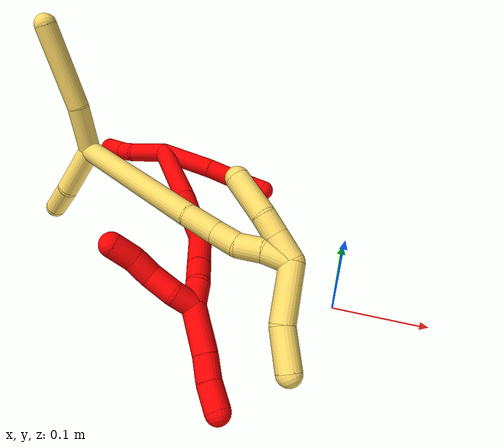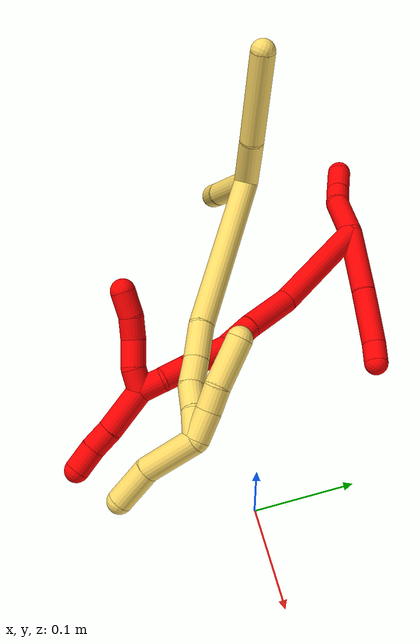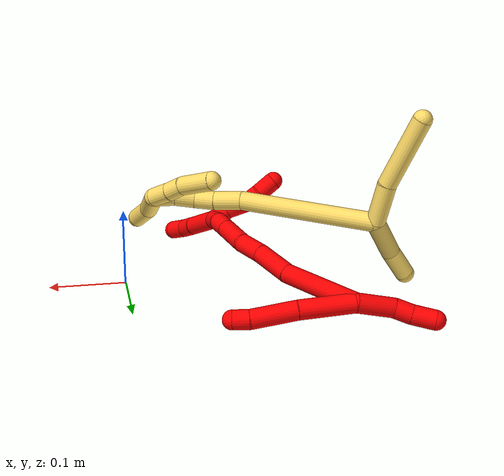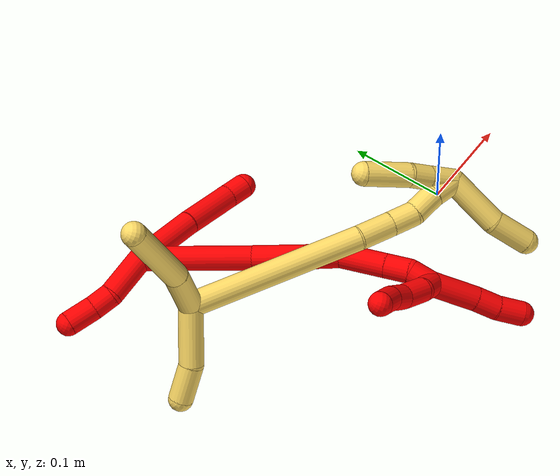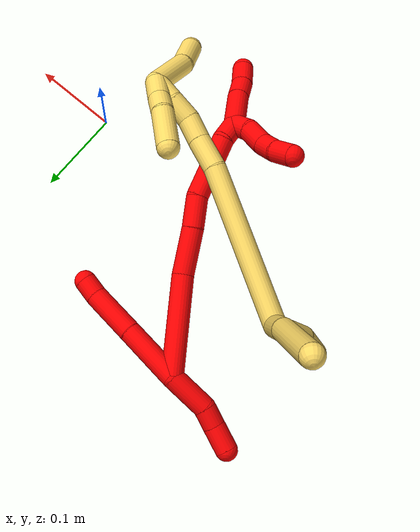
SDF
<sdf version="1.7">
 <world name="default">
  <model name="2">
   <static>0</static>
   <link name="2">
    <collision name="collision-cylinder-e_1_2_8">
     <pose>0.021739 0.016576 -0.021664 -2.48846 0.672867 -1.60286</pose>
     <geometry><cylinder><radius>0.0125</radius><length>0.069761</length></cylinder></geometry>
     <surface>
      <friction><ode><mu>1.16</mu><mu2>1.16</mu2><slip1>0</slip1><slip2>0</slip2></ode></friction>
      <contact><ode><kp>1e+06</kp><kd>1</kd><max_vel>0</max_vel><min_depth>0.001</min_depth></ode></contact>
     </surface>
    </collision>
    <visual name="visual-cylinder-e_1_2_8">
     <pose>0.021739 0.016576 -0.021664 -2.48846 0.672867 -1.60286</pose>
     <geometry><cylinder><radius>0.0125</radius><length>0.069761</length></cylinder></geometry>
     <material><ambient>1 0 0 1</ambient></material>
    </visual>
    <collision name="collision-cylinder-e_2_8_9">
     <pose>0.05988 0.048154 -0.062423 -2.47566 0.594062 -1.44898</pose>
     <geometry><cylinder><radius>0.0125</radius><length>0.058608</length></cylinder></geometry>
     <surface>
      <friction><ode><mu>1.16</mu><mu2>1.16</mu2><slip1>0</slip1><slip2>0</slip2></ode></friction>
      <contact><ode><kp>1e+06</kp><kd>1</kd><max_vel>0</max_vel><min_depth>0.001</min_depth></ode></contact>
     </surface>
    </collision>
    <visual name="visual-cylinder-e_2_8_9">
     <pose>0.05988 0.048154 -0.062423 -2.47566 0.594062 -1.44898</pose>
     <geometry><cylinder><radius>0.0125</radius><length>0.058608</length></cylinder></geometry>
     <material><ambient>1 0 0 1</ambient></material>
    </visual>
    <collision name="collision-cylinder-e_3_9_6">
     <pose>0.083345 0.067137 -0.088676 -2.63408 0.711617 -1.92299</pose>
     <geometry><cylinder><radius>0.0125</radius><length>0.021631</length></cylinder></geometry>
     <surface>
      <friction><ode><mu>1.16</mu><mu2>1.16</mu2><slip1>0</slip1><slip2>0</slip2></ode></friction>
      <contact><ode><kp>1e+06</kp><kd>1</kd><max_vel>0</max_vel><min_depth>0.001</min_depth></ode></contact>
     </surface>
    </collision>
    <visual name="visual-cylinder-e_3_9_6">
     <pose>0.083345 0.067137 -0.088676 -2.63408 0.711617 -1.92299</pose>
     <geometry><cylinder><radius>0.0125</radius><length>0.021631</length></cylinder></geometry>
     <material><ambient>1 0 0 1</ambient></material>
    </visual>
    <collision name="collision-cylinder-e_1_2_10">
     <pose>-0.020127 -0.008536 0.009895 0.711813 -0.994918 -0.398359</pose>
     <geometry><cylinder><radius>0.0125</radius><length>0.047995</length></cylinder></geometry>
     <surface>
      <friction><ode><mu>1.16</mu><mu2>1.16</mu2><slip1>0</slip1><slip2>0</slip2></ode></friction>
      <contact><ode><kp>1e+06</kp><kd>1</kd><max_vel>0</max_vel><min_depth>0.001</min_depth></ode></contact>
     </surface>
    </collision>
    <visual name="visual-cylinder-e_1_2_10">
     <pose>-0.020127 -0.008536 0.009895 0.711813 -0.994918 -0.398359</pose>
     <geometry><cylinder><radius>0.0125</radius><length>0.047995</length></cylinder></geometry>
     <material><ambient>1 0 0 1</ambient></material>
    </visual>
    <collision name="collision-cylinder-e_2_10_11">
     <pose>-0.049562 -0.017587 0.026062 0.081875 -0.976299 -0.043494</pose>
     <geometry><cylinder><radius>0.0125</radius><length>0.022471</length></cylinder></geometry>
     <surface>
      <friction><ode><mu>1.16</mu><mu2>1.16</mu2><slip1>0</slip1><slip2>0</slip2></ode></friction>
      <contact><ode><kp>1e+06</kp><kd>1</kd><max_vel>0</max_vel><min_depth>0.001</min_depth></ode></contact>
     </surface>
    </collision>
    <visual name="visual-cylinder-e_2_10_11">
     <pose>-0.049562 -0.017587 0.026062 0.081875 -0.976299 -0.043494</pose>
     <geometry><cylinder><radius>0.0125</radius><length>0.022471</length></cylinder></geometry>
     <material><ambient>1 0 0 1</ambient></material>
    </visual>
    <collision name="collision-cylinder-e_3_11_5">
     <pose>-0.069992 -0.019937 0.041873 0.190077 -0.852854 -0.08656</pose>
     <geometry><cylinder><radius>0.0125</radius><length>0.029534</length></cylinder></geometry>
     <surface>
      <friction><ode><mu>1.16</mu><mu2>1.16</mu2><slip1>0</slip1><slip2>0</slip2></ode></friction>
      <contact><ode><kp>1e+06</kp><kd>1</kd><max_vel>0</max_vel><min_depth>0.001</min_depth></ode></contact>
     </surface>
    </collision>
    <visual name="visual-cylinder-e_3_11_5">
     <pose>-0.069992 -0.019937 0.041873 0.190077 -0.852854 -0.08656</pose>
     <geometry><cylinder><radius>0.0125</radius><length>0.029534</length></cylinder></geometry>
     <material><ambient>1 0 0 1</ambient></material>
    </visual>
    <collision name="collision-cylinder-e_1_2_12">
     <pose>0.021918 -0.015957 -0.049402 2.82917 0.399486 1.81926</pose>
     <geometry><cylinder><radius>0.0125</radius><length>0.112705</length></cylinder></geometry>
     <surface>
      <friction><ode><mu>1.16</mu><mu2>1.16</mu2><slip1>0</slip1><slip2>0</slip2></ode></friction>
      <contact><ode><kp>1e+06</kp><kd>1</kd><max_vel>0</max_vel><min_depth>0.001</min_depth></ode></contact>
     </surface>
    </collision>
    <visual name="visual-cylinder-e_1_2_12">
     <pose>0.021918 -0.015957 -0.049402 2.82917 0.399486 1.81926</pose>
     <geometry><cylinder><radius>0.0125</radius><length>0.112705</length></cylinder></geometry>
     <material><ambient>1 0 0 1</ambient></material>
    </visual>
    <collision name="collision-cylinder-e_2_12_13">
     <pose>0.055186 -0.043953 -0.119834 2.62167 0.43805 1.39367</pose>
     <geometry><cylinder><radius>0.0125</radius><length>0.053517</length></cylinder></geometry>
     <surface>
      <friction><ode><mu>1.16</mu><mu2>1.16</mu2><slip1>0</slip1><slip2>0</slip2></ode></friction>
      <contact><ode><kp>1e+06</kp><kd>1</kd><max_vel>0</max_vel><min_depth>0.001</min_depth></ode></contact>
     </surface>
    </collision>
    <visual name="visual-cylinder-e_2_12_13">
     <pose>0.055186 -0.043953 -0.119834 2.62167 0.43805 1.39367</pose>
     <geometry><cylinder><radius>0.0125</radius><length>0.053517</length></cylinder></geometry>
     <material><ambient>1 0 0 1</ambient></material>
    </visual>
    <collision name="collision-cylinder-e_3_13_14">
     <pose>0.074341 -0.062567 -0.155798 2.72682 0.446118 1.64588</pose>
     <geometry><cylinder><radius>0.0125</radius><length>0.036177</length></cylinder></geometry>
     <surface>
      <friction><ode><mu>1.16</mu><mu2>1.16</mu2><slip1>0</slip1><slip2>0</slip2></ode></friction>
      <contact><ode><kp>1e+06</kp><kd>1</kd><max_vel>0</max_vel><min_depth>0.001</min_depth></ode></contact>
     </surface>
    </collision>
    <visual name="visual-cylinder-e_3_13_14">
     <pose>0.074341 -0.062567 -0.155798 2.72682 0.446118 1.64588</pose>
     <geometry><cylinder><radius>0.0125</radius><length>0.036177</length></cylinder></geometry>
     <material><ambient>1 0 0 1</ambient></material>
    </visual>
    <collision name="collision-cylinder-e_4_14_15">
     <pose>0.087074 -0.081989 -0.190192 2.55811 0.208313 0.669938</pose>
     <geometry><cylinder><radius>0.0125</radius><length>0.047665</length></cylinder></geometry>
     <surface>
      <friction><ode><mu>1.16</mu><mu2>1.16</mu2><slip1>0</slip1><slip2>0</slip2></ode></friction>
      <contact><ode><kp>1e+06</kp><kd>1</kd><max_vel>0</max_vel><min_depth>0.001</min_depth></ode></contact>
     </surface>
    </collision>
    <visual name="visual-cylinder-e_4_14_15">
     <pose>0.087074 -0.081989 -0.190192 2.55811 0.208313 0.669938</pose>
     <geometry><cylinder><radius>0.0125</radius><length>0.047665</length></cylinder></geometry>
     <material><ambient>1 0 0 1</ambient></material>
    </visual>
    <collision name="collision-cylinder-e_5_15_16">
     <pose>0.094625 -0.101646 -0.220012 2.56004 0.208373 0.672307</pose>
     <geometry><cylinder><radius>0.0125</radius><length>0.025346</length></cylinder></geometry>
     <surface>
      <friction><ode><mu>1.16</mu><mu2>1.16</mu2><slip1>0</slip1><slip2>0</slip2></ode></friction>
      <contact><ode><kp>1e+06</kp><kd>1</kd><max_vel>0</max_vel><min_depth>0.001</min_depth></ode></contact>
     </surface>
    </collision>
    <visual name="visual-cylinder-e_5_15_16">
     <pose>0.094625 -0.101646 -0.220012 2.56004 0.208373 0.672307</pose>
     <geometry><cylinder><radius>0.0125</radius><length>0.025346</length></cylinder></geometry>
     <material><ambient>1 0 0 1</ambient></material>
    </visual>
    <collision name="collision-cylinder-e_6_16_1">
     <pose>0.095778 -0.114055 -0.241221 2.66525 -0.119735 -0.48409</pose>
     <geometry><cylinder><radius>0.0125</radius><length>0.024591</length></cylinder></geometry>
     <surface>
      <friction><ode><mu>1.16</mu><mu2>1.16</mu2><slip1>0</slip1><slip2>0</slip2></ode></friction>
      <contact><ode><kp>1e+06</kp><kd>1</kd><max_vel>0</max_vel><min_depth>0.001</min_depth></ode></contact>
     </surface>
    </collision>
    <visual name="visual-cylinder-e_6_16_1">
     <pose>0.095778 -0.114055 -0.241221 2.66525 -0.119735 -0.48409</pose>
     <geometry><cylinder><radius>0.0125</radius><length>0.024591</length></cylinder></geometry>
     <material><ambient>1 0 0 1</ambient></material>
    </visual>
    <collision name="collision-cylinder-e_1_1_17">
     <pose>0.091854 -0.128387 -0.245002 0.890466 -0.215109 -0.102954</pose>
     <geometry><cylinder><radius>0.0125</radius><length>0.023001</length></cylinder></geometry>
     <surface>
      <friction><ode><mu>1.16</mu><mu2>1.16</mu2><slip1>0</slip1><slip2>0</slip2></ode></friction>
      <contact><ode><kp>1e+06</kp><kd>1</kd><max_vel>0</max_vel><min_depth>0.001</min_depth></ode></contact>
     </surface>
    </collision>
    <visual name="visual-cylinder-e_1_1_17">
     <pose>0.091854 -0.128387 -0.245002 0.890466 -0.215109 -0.102954</pose>
     <geometry><cylinder><radius>0.0125</radius><length>0.023001</length></cylinder></geometry>
     <material><ambient>1 0 0 1</ambient></material>
    </visual>
    <collision name="collision-cylinder-e_2_17_18">
     <pose>0.08426 -0.144152 -0.226871 0.566149 -0.373619 -0.109852</pose>
     <geometry><cylinder><radius>0.0125</radius><length>0.028159</length></cylinder></geometry>
     <surface>
      <friction><ode><mu>1.16</mu><mu2>1.16</mu2><slip1>0</slip1><slip2>0</slip2></ode></friction>
      <contact><ode><kp>1e+06</kp><kd>1</kd><max_vel>0</max_vel><min_depth>0.001</min_depth></ode></contact>
     </surface>
    </collision>
    <visual name="visual-cylinder-e_2_17_18">
     <pose>0.08426 -0.144152 -0.226871 0.566149 -0.373619 -0.109852</pose>
     <geometry><cylinder><radius>0.0125</radius><length>0.028159</length></cylinder></geometry>
     <material><ambient>1 0 0 1</ambient></material>
    </visual>
    <collision name="collision-cylinder-e_3_18_19">
     <pose>0.078042 -0.158724 -0.20706 0.711464 -0.093169 -0.034637</pose>
     <geometry><cylinder><radius>0.0125</radius><length>0.0232</length></cylinder></geometry>
     <surface>
      <friction><ode><mu>1.16</mu><mu2>1.16</mu2><slip1>0</slip1><slip2>0</slip2></ode></friction>
      <contact><ode><kp>1e+06</kp><kd>1</kd><max_vel>0</max_vel><min_depth>0.001</min_depth></ode></contact>
     </surface>
    </collision>
    <visual name="visual-cylinder-e_3_18_19">
     <pose>0.078042 -0.158724 -0.20706 0.711464 -0.093169 -0.034637</pose>
     <geometry><cylinder><radius>0.0125</radius><length>0.0232</length></cylinder></geometry>
     <material><ambient>1 0 0 1</ambient></material>
    </visual>
    <collision name="collision-cylinder-e_4_19_4">
     <pose>0.075079 -0.176398 -0.190688 0.925747 -0.147531 -0.073723</pose>
     <geometry><cylinder><radius>0.0125</radius><length>0.02564</length></cylinder></geometry>
     <surface>
      <friction><ode><mu>1.16</mu><mu2>1.16</mu2><slip1>0</slip1><slip2>0</slip2></ode></friction>
      <contact><ode><kp>1e+06</kp><kd>1</kd><max_vel>0</max_vel><min_depth>0.001</min_depth></ode></contact>
     </surface>
    </collision>
    <visual name="visual-cylinder-e_4_19_4">
     <pose>0.075079 -0.176398 -0.190688 0.925747 -0.147531 -0.073723</pose>
     <geometry><cylinder><radius>0.0125</radius><length>0.02564</length></cylinder></geometry>
     <material><ambient>1 0 0 1</ambient></material>
    </visual>
    <collision name="collision-cylinder-e_1_1_20">
     <pose>0.094371 -0.120292 -0.27633 3.11522 0.00258 0.195023</pose>
     <geometry><cylinder><radius>0.0125</radius><length>0.048539</length></cylinder></geometry>
     <surface>
      <friction><ode><mu>1.16</mu><mu2>1.16</mu2><slip1>0</slip1><slip2>0</slip2></ode></friction>
      <contact><ode><kp>1e+06</kp><kd>1</kd><max_vel>0</max_vel><min_depth>0.001</min_depth></ode></contact>
     </surface>
    </collision>
    <visual name="visual-cylinder-e_1_1_20">
     <pose>0.094371 -0.120292 -0.27633 3.11522 0.00258 0.195023</pose>
     <geometry><cylinder><radius>0.0125</radius><length>0.048539</length></cylinder></geometry>
     <material><ambient>1 0 0 1</ambient></material>
    </visual>
    <collision name="collision-cylinder-e_2_20_21">
     <pose>0.09377 -0.122255 -0.312772 3.03342 -0.054133 -0.927444</pose>
     <geometry><cylinder><radius>0.0125</radius><length>0.02454</length></cylinder></geometry>
     <surface>
      <friction><ode><mu>1.16</mu><mu2>1.16</mu2><slip1>0</slip1><slip2>0</slip2></ode></friction>
      <contact><ode><kp>1e+06</kp><kd>1</kd><max_vel>0</max_vel><min_depth>0.001</min_depth></ode></contact>
     </surface>
    </collision>
    <visual name="visual-cylinder-e_2_20_21">
     <pose>0.09377 -0.122255 -0.312772 3.03342 -0.054133 -0.927444</pose>
     <geometry><cylinder><radius>0.0125</radius><length>0.02454</length></cylinder></geometry>
     <material><ambient>1 0 0 1</ambient></material>
    </visual>
    <collision name="collision-cylinder-e_3_21_3">
     <pose>0.094411 -0.124173 -0.338336 3.09715 0.097112 2.28374</pose>
     <geometry><cylinder><radius>0.0125</radius><length>0.026921</length></cylinder></geometry>
     <surface>
      <friction><ode><mu>1.16</mu><mu2>1.16</mu2><slip1>0</slip1><slip2>0</slip2></ode></friction>
      <contact><ode><kp>1e+06</kp><kd>1</kd><max_vel>0</max_vel><min_depth>0.001</min_depth></ode></contact>
     </surface>
    </collision>
    <visual name="visual-cylinder-e_3_21_3">
     <pose>0.094411 -0.124173 -0.338336 3.09715 0.097112 2.28374</pose>
     <geometry><cylinder><radius>0.0125</radius><length>0.026921</length></cylinder></geometry>
     <material><ambient>1 0 0 1</ambient></material>
    </visual>
    <collision name="collision-sphere-3">
     <pose>0.095717 -0.124768 -0.35172 0 -0 0</pose>
     <geometry><sphere><radius>0.0125</radius></sphere></geometry>
     <surface>
      <friction><ode><mu>1.16</mu><mu2>1.16</mu2><slip1>0</slip1><slip2>0</slip2></ode></friction>
      <contact><ode><kp>1e+06</kp><kd>1</kd><max_vel>0</max_vel><min_depth>0.001</min_depth></ode></contact>
     </surface>
    </collision>
    <visual name="visual-sphere-3">
     <pose>0.095717 -0.124768 -0.35172 0 -0 0</pose>
     <geometry><sphere><radius>0.0125</radius></sphere></geometry>
     <material><ambient>1 0 0 1</ambient></material>
    </visual>
    <collision name="collision-sphere-21">
     <pose>0.093106 -0.123578 -0.324952 0 -0 0</pose>
     <geometry><sphere><radius>0.0125</radius></sphere></geometry>
     <surface>
      <friction><ode><mu>1.16</mu><mu2>1.16</mu2><slip1>0</slip1><slip2>0</slip2></ode></friction>
      <contact><ode><kp>1e+06</kp><kd>1</kd><max_vel>0</max_vel><min_depth>0.001</min_depth></ode></contact>
     </surface>
    </collision>
    <visual name="visual-sphere-21">
     <pose>0.093106 -0.123578 -0.324952 0 -0 0</pose>
     <geometry><sphere><radius>0.0125</radius></sphere></geometry>
     <material><ambient>1 0 0 1</ambient></material>
    </visual>
    <collision name="collision-sphere-20">
     <pose>0.094434 -0.120932 -0.300591 0 -0 0</pose>
     <geometry><sphere><radius>0.0125</radius></sphere></geometry>
     <surface>
      <friction><ode><mu>1.16</mu><mu2>1.16</mu2><slip1>0</slip1><slip2>0</slip2></ode></friction>
      <contact><ode><kp>1e+06</kp><kd>1</kd><max_vel>0</max_vel><min_depth>0.001</min_depth></ode></contact>
     </surface>
    </collision>
    <visual name="visual-sphere-20">
     <pose>0.094434 -0.120932 -0.300591 0 -0 0</pose>
     <geometry><sphere><radius>0.0125</radius></sphere></geometry>
     <material><ambient>1 0 0 1</ambient></material>
    </visual>
    <collision name="collision-sphere-4">
     <pose>0.073194 -0.186531 -0.183064 0 -0 0</pose>
     <geometry><sphere><radius>0.0125</radius></sphere></geometry>
     <surface>
      <friction><ode><mu>1.16</mu><mu2>1.16</mu2><slip1>0</slip1><slip2>0</slip2></ode></friction>
      <contact><ode><kp>1e+06</kp><kd>1</kd><max_vel>0</max_vel><min_depth>0.001</min_depth></ode></contact>
     </surface>
    </collision>
    <visual name="visual-sphere-4">
     <pose>0.073194 -0.186531 -0.183064 0 -0 0</pose>
     <geometry><sphere><radius>0.0125</radius></sphere></geometry>
     <material><ambient>1 0 0 1</ambient></material>
    </visual>
    <collision name="collision-sphere-11">
     <pose>-0.05887 -0.018102 0.032334 0 -0 0</pose>
     <geometry><sphere><radius>0.0125</radius></sphere></geometry>
     <surface>
      <friction><ode><mu>1.16</mu><mu2>1.16</mu2><slip1>0</slip1><slip2>0</slip2></ode></friction>
      <contact><ode><kp>1e+06</kp><kd>1</kd><max_vel>0</max_vel><min_depth>0.001</min_depth></ode></contact>
     </surface>
    </collision>
    <visual name="visual-sphere-11">
     <pose>-0.05887 -0.018102 0.032334 0 -0 0</pose>
     <geometry><sphere><radius>0.0125</radius></sphere></geometry>
     <material><ambient>1 0 0 1</ambient></material>
    </visual>
    <collision name="collision-sphere-10">
     <pose>-0.040254 -0.017073 0.01979 0 -0 0</pose>
     <geometry><sphere><radius>0.0125</radius></sphere></geometry>
     <surface>
      <friction><ode><mu>1.16</mu><mu2>1.16</mu2><slip1>0</slip1><slip2>0</slip2></ode></friction>
      <contact><ode><kp>1e+06</kp><kd>1</kd><max_vel>0</max_vel><min_depth>0.001</min_depth></ode></contact>
     </surface>
    </collision>
    <visual name="visual-sphere-10">
     <pose>-0.040254 -0.017073 0.01979 0 -0 0</pose>
     <geometry><sphere><radius>0.0125</radius></sphere></geometry>
     <material><ambient>1 0 0 1</ambient></material>
    </visual>
    <collision name="collision-sphere-6">
     <pose>0.090408 0.071118 -0.095834 0 -0 0</pose>
     <geometry><sphere><radius>0.0125</radius></sphere></geometry>
     <surface>
      <friction><ode><mu>1.16</mu><mu2>1.16</mu2><slip1>0</slip1><slip2>0</slip2></ode></friction>
      <contact><ode><kp>1e+06</kp><kd>1</kd><max_vel>0</max_vel><min_depth>0.001</min_depth></ode></contact>
     </surface>
    </collision>
    <visual name="visual-sphere-6">
     <pose>0.090408 0.071118 -0.095834 0 -0 0</pose>
     <geometry><sphere><radius>0.0125</radius></sphere></geometry>
     <material><ambient>1 0 0 1</ambient></material>
    </visual>
    <collision name="collision-sphere-9">
     <pose>0.076282 0.063156 -0.081518 0 -0 0</pose>
     <geometry><sphere><radius>0.0125</radius></sphere></geometry>
     <surface>
      <friction><ode><mu>1.16</mu><mu2>1.16</mu2><slip1>0</slip1><slip2>0</slip2></ode></friction>
      <contact><ode><kp>1e+06</kp><kd>1</kd><max_vel>0</max_vel><min_depth>0.001</min_depth></ode></contact>
     </surface>
    </collision>
    <visual name="visual-sphere-9">
     <pose>0.076282 0.063156 -0.081518 0 -0 0</pose>
     <geometry><sphere><radius>0.0125</radius></sphere></geometry>
     <material><ambient>1 0 0 1</ambient></material>
    </visual>
    <collision name="collision-sphere-2">
     <geometry><sphere><radius>0.0125</radius></sphere></geometry>
     <surface>
      <friction><ode><mu>1.16</mu><mu2>1.16</mu2><slip1>0</slip1><slip2>0</slip2></ode></friction>
      <contact><ode><kp>1e+06</kp><kd>1</kd><max_vel>0</max_vel><min_depth>0.001</min_depth></ode></contact>
     </surface>
    </collision>
    <visual name="visual-sphere-2">
     <geometry><sphere><radius>0.0125</radius></sphere></geometry>
     <material><ambient>1 0 0 1</ambient></material>
    </visual>
    <collision name="collision-sphere-19">
     <pose>0.076963 -0.166266 -0.198312 0 -0 0</pose>
     <geometry><sphere><radius>0.0125</radius></sphere></geometry>
     <surface>
      <friction><ode><mu>1.16</mu><mu2>1.16</mu2><slip1>0</slip1><slip2>0</slip2></ode></friction>
      <contact><ode><kp>1e+06</kp><kd>1</kd><max_vel>0</max_vel><min_depth>0.001</min_depth></ode></contact>
     </surface>
    </collision>
    <visual name="visual-sphere-19">
     <pose>0.076963 -0.166266 -0.198312 0 -0 0</pose>
     <geometry><sphere><radius>0.0125</radius></sphere></geometry>
     <material><ambient>1 0 0 1</ambient></material>
    </visual>
    <collision name="collision-sphere-8">
     <pose>0.043477 0.033152 -0.043327 0 -0 0</pose>
     <geometry><sphere><radius>0.0125</radius></sphere></geometry>
     <surface>
      <friction><ode><mu>1.16</mu><mu2>1.16</mu2><slip1>0</slip1><slip2>0</slip2></ode></friction>
      <contact><ode><kp>1e+06</kp><kd>1</kd><max_vel>0</max_vel><min_depth>0.001</min_depth></ode></contact>
     </surface>
    </collision>
    <visual name="visual-sphere-8">
     <pose>0.043477 0.033152 -0.043327 0 -0 0</pose>
     <geometry><sphere><radius>0.0125</radius></sphere></geometry>
     <material><ambient>1 0 0 1</ambient></material>
    </visual>
    <collision name="collision-sphere-5">
     <pose>-0.081114 -0.021773 0.051413 0 -0 0</pose>
     <geometry><sphere><radius>0.0125</radius></sphere></geometry>
     <surface>
      <friction><ode><mu>1.16</mu><mu2>1.16</mu2><slip1>0</slip1><slip2>0</slip2></ode></friction>
      <contact><ode><kp>1e+06</kp><kd>1</kd><max_vel>0</max_vel><min_depth>0.001</min_depth></ode></contact>
     </surface>
    </collision>
    <visual name="visual-sphere-5">
     <pose>-0.081114 -0.021773 0.051413 0 -0 0</pose>
     <geometry><sphere><radius>0.0125</radius></sphere></geometry>
     <material><ambient>1 0 0 1</ambient></material>
    </visual>
    <collision name="collision-sphere-12">
     <pose>0.043836 -0.031914 -0.098804 0 -0 0</pose>
     <geometry><sphere><radius>0.0125</radius></sphere></geometry>
     <surface>
      <friction><ode><mu>1.16</mu><mu2>1.16</mu2><slip1>0</slip1><slip2>0</slip2></ode></friction>
      <contact><ode><kp>1e+06</kp><kd>1</kd><max_vel>0</max_vel><min_depth>0.001</min_depth></ode></contact>
     </surface>
    </collision>
    <visual name="visual-sphere-12">
     <pose>0.043836 -0.031914 -0.098804 0 -0 0</pose>
     <geometry><sphere><radius>0.0125</radius></sphere></geometry>
     <material><ambient>1 0 0 1</ambient></material>
    </visual>
    <collision name="collision-sphere-13">
     <pose>0.066536 -0.055991 -0.140864 0 -0 0</pose>
     <geometry><sphere><radius>0.0125</radius></sphere></geometry>
     <surface>
      <friction><ode><mu>1.16</mu><mu2>1.16</mu2><slip1>0</slip1><slip2>0</slip2></ode></friction>
      <contact><ode><kp>1e+06</kp><kd>1</kd><max_vel>0</max_vel><min_depth>0.001</min_depth></ode></contact>
     </surface>
    </collision>
    <visual name="visual-sphere-13">
     <pose>0.066536 -0.055991 -0.140864 0 -0 0</pose>
     <geometry><sphere><radius>0.0125</radius></sphere></geometry>
     <material><ambient>1 0 0 1</ambient></material>
    </visual>
    <collision name="collision-sphere-14">
     <pose>0.082146 -0.069143 -0.170733 0 -0 0</pose>
     <geometry><sphere><radius>0.0125</radius></sphere></geometry>
     <surface>
      <friction><ode><mu>1.16</mu><mu2>1.16</mu2><slip1>0</slip1><slip2>0</slip2></ode></friction>
      <contact><ode><kp>1e+06</kp><kd>1</kd><max_vel>0</max_vel><min_depth>0.001</min_depth></ode></contact>
     </surface>
    </collision>
    <visual name="visual-sphere-14">
     <pose>0.082146 -0.069143 -0.170733 0 -0 0</pose>
     <geometry><sphere><radius>0.0125</radius></sphere></geometry>
     <material><ambient>1 0 0 1</ambient></material>
    </visual>
    <collision name="collision-sphere-15">
     <pose>0.092003 -0.094835 -0.209651 0 -0 0</pose>
     <geometry><sphere><radius>0.0125</radius></sphere></geometry>
     <surface>
      <friction><ode><mu>1.16</mu><mu2>1.16</mu2><slip1>0</slip1><slip2>0</slip2></ode></friction>
      <contact><ode><kp>1e+06</kp><kd>1</kd><max_vel>0</max_vel><min_depth>0.001</min_depth></ode></contact>
     </surface>
    </collision>
    <visual name="visual-sphere-15">
     <pose>0.092003 -0.094835 -0.209651 0 -0 0</pose>
     <geometry><sphere><radius>0.0125</radius></sphere></geometry>
     <material><ambient>1 0 0 1</ambient></material>
    </visual>
    <collision name="collision-sphere-16">
     <pose>0.097246 -0.108457 -0.230372 0 -0 0</pose>
     <geometry><sphere><radius>0.0125</radius></sphere></geometry>
     <surface>
      <friction><ode><mu>1.16</mu><mu2>1.16</mu2><slip1>0</slip1><slip2>0</slip2></ode></friction>
      <contact><ode><kp>1e+06</kp><kd>1</kd><max_vel>0</max_vel><min_depth>0.001</min_depth></ode></contact>
     </surface>
    </collision>
    <visual name="visual-sphere-16">
     <pose>0.097246 -0.108457 -0.230372 0 -0 0</pose>
     <geometry><sphere><radius>0.0125</radius></sphere></geometry>
     <material><ambient>1 0 0 1</ambient></material>
    </visual>
    <collision name="collision-sphere-1">
     <pose>0.094309 -0.119652 -0.252069 0 -0 0</pose>
     <geometry><sphere><radius>0.0125</radius></sphere></geometry>
     <surface>
      <friction><ode><mu>1.16</mu><mu2>1.16</mu2><slip1>0</slip1><slip2>0</slip2></ode></friction>
      <contact><ode><kp>1e+06</kp><kd>1</kd><max_vel>0</max_vel><min_depth>0.001</min_depth></ode></contact>
     </surface>
    </collision>
    <visual name="visual-sphere-1">
     <pose>0.094309 -0.119652 -0.252069 0 -0 0</pose>
     <geometry><sphere><radius>0.0125</radius></sphere></geometry>
     <material><ambient>1 0 0 1</ambient></material>
    </visual>
    <collision name="collision-sphere-18">
     <pose>0.079122 -0.151183 -0.215808 0 -0 0</pose>
     <geometry><sphere><radius>0.0125</radius></sphere></geometry>
     <surface>
      <friction><ode><mu>1.16</mu><mu2>1.16</mu2><slip1>0</slip1><slip2>0</slip2></ode></friction>
      <contact><ode><kp>1e+06</kp><kd>1</kd><max_vel>0</max_vel><min_depth>0.001</min_depth></ode></contact>
     </surface>
    </collision>
    <visual name="visual-sphere-18">
     <pose>0.079122 -0.151183 -0.215808 0 -0 0</pose>
     <geometry><sphere><radius>0.0125</radius></sphere></geometry>
     <material><ambient>1 0 0 1</ambient></material>
    </visual>
    <collision name="collision-sphere-17">
     <pose>0.089399 -0.137121 -0.237934 0 -0 0</pose>
     <geometry><sphere><radius>0.0125</radius></sphere></geometry>
     <surface>
      <friction><ode><mu>1.16</mu><mu2>1.16</mu2><slip1>0</slip1><slip2>0</slip2></ode></friction>
      <contact><ode><kp>1e+06</kp><kd>1</kd><max_vel>0</max_vel><min_depth>0.001</min_depth></ode></contact>
     </surface>
    </collision>
    <visual name="visual-sphere-17">
     <pose>0.089399 -0.137121 -0.237934 0 -0 0</pose>
     <geometry><sphere><radius>0.0125</radius></sphere></geometry>
     <material><ambient>1 0 0 1</ambient></material>
    </visual>
    <inertial>
     <pose>0.049791 -0.052087 -0.126527 0 -0 0</pose>
     <mass>0.75</mass>
     <inertia>
      <ixx>0.000115</ixx>
      <ixy>0</ixy>
      <ixz>0</ixz>
      <iyy>0.000148</iyy>
      <iyz>0</iyz>
      <izz>-6.3e-05</izz>
     </inertia>
    </inertial>
   </link>
   <pose>-0.260955 0.184415 0.032598 -0.897017 -0.768754 0.0682</pose>
  </model>
  <model name="5">
   <static>0</static>
   <link name="5">
    <collision name="collision-cylinder-e_1_2_8">
     <pose>0.009638 -0.015948 0.019882 0.676046 0.361522 0.128306</pose>
     <geometry><cylinder><radius>0.0125</radius><length>0.054499</length></cylinder></geometry>
     <surface>
      <friction><ode><mu>1.16</mu><mu2>1.16</mu2><slip1>0</slip1><slip2>0</slip2></ode></friction>
      <contact><ode><kp>1e+06</kp><kd>1</kd><max_vel>0</max_vel><min_depth>0.001</min_depth></ode></contact>
     </surface>
    </collision>
    <visual name="visual-cylinder-e_1_2_8">
     <pose>0.009638 -0.015948 0.019882 0.676046 0.361522 0.128306</pose>
     <geometry><cylinder><radius>0.0125</radius><length>0.054499</length></cylinder></geometry>
     <material><ambient>1 0.858824 0.4 1</ambient></material>
    </visual>
    <collision name="collision-cylinder-e_2_8_6">
     <pose>0.02904 -0.057008 0.079187 0.567167 0.205927 0.06021</pose>
     <geometry><cylinder><radius>0.0125</radius><length>0.095501</length></cylinder></geometry>
     <surface>
      <friction><ode><mu>1.16</mu><mu2>1.16</mu2><slip1>0</slip1><slip2>0</slip2></ode></friction>
      <contact><ode><kp>1e+06</kp><kd>1</kd><max_vel>0</max_vel><min_depth>0.001</min_depth></ode></contact>
     </surface>
    </collision>
    <visual name="visual-cylinder-e_2_8_6">
     <pose>0.02904 -0.057008 0.079187 0.567167 0.205927 0.06021</pose>
     <geometry><cylinder><radius>0.0125</radius><length>0.095501</length></cylinder></geometry>
     <material><ambient>1 0.858824 0.4 1</ambient></material>
    </visual>
    <collision name="collision-cylinder-e_1_2_9">
     <pose>-0.026884 0.008586 -0.011856 -2.51486 -1.07217 2.14296</pose>
     <geometry><cylinder><radius>0.0125</radius><length>0.061221</length></cylinder></geometry>
     <surface>
      <friction><ode><mu>1.16</mu><mu2>1.16</mu2><slip1>0</slip1><slip2>0</slip2></ode></friction>
      <contact><ode><kp>1e+06</kp><kd>1</kd><max_vel>0</max_vel><min_depth>0.001</min_depth></ode></contact>
     </surface>
    </collision>
    <visual name="visual-cylinder-e_1_2_9">
     <pose>-0.026884 0.008586 -0.011856 -2.51486 -1.07217 2.14296</pose>
     <geometry><cylinder><radius>0.0125</radius><length>0.061221</length></cylinder></geometry>
     <material><ambient>1 0.858824 0.4 1</ambient></material>
    </visual>
    <collision name="collision-cylinder-e_2_9_5">
     <pose>-0.070432 0.026503 -0.027053 -1.9145 -1.03424 1.35875</pose>
     <geometry><cylinder><radius>0.0125</radius><length>0.038779</length></cylinder></geometry>
     <surface>
      <friction><ode><mu>1.16</mu><mu2>1.16</mu2><slip1>0</slip1><slip2>0</slip2></ode></friction>
      <contact><ode><kp>1e+06</kp><kd>1</kd><max_vel>0</max_vel><min_depth>0.001</min_depth></ode></contact>
     </surface>
    </collision>
    <visual name="visual-cylinder-e_2_9_5">
     <pose>-0.070432 0.026503 -0.027053 -1.9145 -1.03424 1.35875</pose>
     <geometry><cylinder><radius>0.0125</radius><length>0.038779</length></cylinder></geometry>
     <material><ambient>1 0.858824 0.4 1</ambient></material>
    </visual>
    <collision name="collision-cylinder-e_1_2_10">
     <pose>0.050848 -0.02617 -0.069729 2.78254 0.599039 2.07898</pose>
     <geometry><cylinder><radius>0.0125</radius><length>0.180361</length></cylinder></geometry>
     <surface>
      <friction><ode><mu>1.16</mu><mu2>1.16</mu2><slip1>0</slip1><slip2>0</slip2></ode></friction>
      <contact><ode><kp>1e+06</kp><kd>1</kd><max_vel>0</max_vel><min_depth>0.001</min_depth></ode></contact>
     </surface>
    </collision>
    <visual name="visual-cylinder-e_1_2_10">
     <pose>0.050848 -0.02617 -0.069729 2.78254 0.599039 2.07898</pose>
     <geometry><cylinder><radius>0.0125</radius><length>0.180361</length></cylinder></geometry>
     <material><ambient>1 0.858824 0.4 1</ambient></material>
    </visual>
    <collision name="collision-cylinder-e_2_10_11">
     <pose>0.11242 -0.054487 -0.154179 2.99683 0.624575 2.69976</pose>
     <geometry><cylinder><radius>0.0125</radius><length>0.03668</length></cylinder></geometry>
     <surface>
      <friction><ode><mu>1.16</mu><mu2>1.16</mu2><slip1>0</slip1><slip2>0</slip2></ode></friction>
      <contact><ode><kp>1e+06</kp><kd>1</kd><max_vel>0</max_vel><min_depth>0.001</min_depth></ode></contact>
     </surface>
    </collision>
    <visual name="visual-cylinder-e_2_10_11">
     <pose>0.11242 -0.054487 -0.154179 2.99683 0.624575 2.69976</pose>
     <geometry><cylinder><radius>0.0125</radius><length>0.03668</length></cylinder></geometry>
     <material><ambient>1 0.858824 0.4 1</ambient></material>
    </visual>
    <collision name="collision-cylinder-e_3_11_12">
     <pose>0.131327 -0.059447 -0.179406 2.87987 0.645035 2.39123</pose>
     <geometry><cylinder><radius>0.0125</radius><length>0.027219</length></cylinder></geometry>
     <surface>
      <friction><ode><mu>1.16</mu><mu2>1.16</mu2><slip1>0</slip1><slip2>0</slip2></ode></friction>
      <contact><ode><kp>1e+06</kp><kd>1</kd><max_vel>0</max_vel><min_depth>0.001</min_depth></ode></contact>
     </surface>
    </collision>
    <visual name="visual-cylinder-e_3_11_12">
     <pose>0.131327 -0.059447 -0.179406 2.87987 0.645035 2.39123</pose>
     <geometry><cylinder><radius>0.0125</radius><length>0.027219</length></cylinder></geometry>
     <material><ambient>1 0.858824 0.4 1</ambient></material>
    </visual>
    <collision name="collision-cylinder-e_4_12_13">
     <pose>0.150794 -0.063492 -0.19771 2.98503 0.960264 2.84259</pose>
     <geometry><cylinder><radius>0.0125</radius><length>0.027545</length></cylinder></geometry>
     <surface>
      <friction><ode><mu>1.16</mu><mu2>1.16</mu2><slip1>0</slip1><slip2>0</slip2></ode></friction>
      <contact><ode><kp>1e+06</kp><kd>1</kd><max_vel>0</max_vel><min_depth>0.001</min_depth></ode></contact>
     </surface>
    </collision>
    <visual name="visual-cylinder-e_4_12_13">
     <pose>0.150794 -0.063492 -0.19771 2.98503 0.960264 2.84259</pose>
     <geometry><cylinder><radius>0.0125</radius><length>0.027545</length></cylinder></geometry>
     <material><ambient>1 0.858824 0.4 1</ambient></material>
    </visual>
    <collision name="collision-cylinder-e_5_13_1">
     <pose>0.171982 -0.064548 -0.215541 -3.12414 0.778881 -3.09908</pose>
     <geometry><cylinder><radius>0.0125</radius><length>0.028196</length></cylinder></geometry>
     <surface>
      <friction><ode><mu>1.16</mu><mu2>1.16</mu2><slip1>0</slip1><slip2>0</slip2></ode></friction>
      <contact><ode><kp>1e+06</kp><kd>1</kd><max_vel>0</max_vel><min_depth>0.001</min_depth></ode></contact>
     </surface>
    </collision>
    <visual name="visual-cylinder-e_5_13_1">
     <pose>0.171982 -0.064548 -0.215541 -3.12414 0.778881 -3.09908</pose>
     <geometry><cylinder><radius>0.0125</radius><length>0.028196</length></cylinder></geometry>
     <material><ambient>1 0.858824 0.4 1</ambient></material>
    </visual>
    <collision name="collision-cylinder-e_1_1_14">
     <pose>0.167135 -0.070031 -0.250283 2.91651 -0.526973 -2.34809</pose>
     <geometry><cylinder><radius>0.0125</radius><length>0.058657</length></cylinder></geometry>
     <surface>
      <friction><ode><mu>1.16</mu><mu2>1.16</mu2><slip1>0</slip1><slip2>0</slip2></ode></friction>
      <contact><ode><kp>1e+06</kp><kd>1</kd><max_vel>0</max_vel><min_depth>0.001</min_depth></ode></contact>
     </surface>
    </collision>
    <visual name="visual-cylinder-e_1_1_14">
     <pose>0.167135 -0.070031 -0.250283 2.91651 -0.526973 -2.34809</pose>
     <geometry><cylinder><radius>0.0125</radius><length>0.058657</length></cylinder></geometry>
     <material><ambient>1 0.858824 0.4 1</ambient></material>
    </visual>
    <collision name="collision-cylinder-e_2_14_4">
     <pose>0.147318 -0.077826 -0.29492 3.03476 -0.247653 -2.33013</pose>
     <geometry><cylinder><radius>0.0125</radius><length>0.041343</length></cylinder></geometry>
     <surface>
      <friction><ode><mu>1.16</mu><mu2>1.16</mu2><slip1>0</slip1><slip2>0</slip2></ode></friction>
      <contact><ode><kp>1e+06</kp><kd>1</kd><max_vel>0</max_vel><min_depth>0.001</min_depth></ode></contact>
     </surface>
    </collision>
    <visual name="visual-cylinder-e_2_14_4">
     <pose>0.147318 -0.077826 -0.29492 3.03476 -0.247653 -2.33013</pose>
     <geometry><cylinder><radius>0.0125</radius><length>0.041343</length></cylinder></geometry>
     <material><ambient>1 0.858824 0.4 1</ambient></material>
    </visual>
    <collision name="collision-cylinder-e_1_1_15">
     <pose>0.179811 -0.063714 -0.211463 -0.046715 -0.14584 0.003413</pose>
     <geometry><cylinder><radius>0.0125</radius><length>0.028554</length></cylinder></geometry>
     <surface>
      <friction><ode><mu>1.16</mu><mu2>1.16</mu2><slip1>0</slip1><slip2>0</slip2></ode></friction>
      <contact><ode><kp>1e+06</kp><kd>1</kd><max_vel>0</max_vel><min_depth>0.001</min_depth></ode></contact>
     </surface>
    </collision>
    <visual name="visual-cylinder-e_1_1_15">
     <pose>0.179811 -0.063714 -0.211463 -0.046715 -0.14584 0.003413</pose>
     <geometry><cylinder><radius>0.0125</radius><length>0.028554</length></cylinder></geometry>
     <material><ambient>1 0.858824 0.4 1</ambient></material>
    </visual>
    <collision name="collision-cylinder-e_2_15_16">
     <pose>0.17612 -0.063362 -0.185921 0.026976 -0.14039 -0.001897</pose>
     <geometry><cylinder><radius>0.0125</radius><length>0.0231</length></cylinder></geometry>
     <surface>
      <friction><ode><mu>1.16</mu><mu2>1.16</mu2><slip1>0</slip1><slip2>0</slip2></ode></friction>
      <contact><ode><kp>1e+06</kp><kd>1</kd><max_vel>0</max_vel><min_depth>0.001</min_depth></ode></contact>
     </surface>
    </collision>
    <visual name="visual-cylinder-e_2_15_16">
     <pose>0.17612 -0.063362 -0.185921 0.026976 -0.14039 -0.001897</pose>
     <geometry><cylinder><radius>0.0125</radius><length>0.0231</length></cylinder></geometry>
     <material><ambient>1 0.858824 0.4 1</ambient></material>
    </visual>
    <collision name="collision-cylinder-e_3_16_3">
     <pose>0.169103 -0.059764 -0.151252 -0.166555 -0.225292 0.018885</pose>
     <geometry><cylinder><radius>0.0125</radius><length>0.048347</length></cylinder></geometry>
     <surface>
      <friction><ode><mu>1.16</mu><mu2>1.16</mu2><slip1>0</slip1><slip2>0</slip2></ode></friction>
      <contact><ode><kp>1e+06</kp><kd>1</kd><max_vel>0</max_vel><min_depth>0.001</min_depth></ode></contact>
     </surface>
    </collision>
    <visual name="visual-cylinder-e_3_16_3">
     <pose>0.169103 -0.059764 -0.151252 -0.166555 -0.225292 0.018885</pose>
     <geometry><cylinder><radius>0.0125</radius><length>0.048347</length></cylinder></geometry>
     <material><ambient>1 0.858824 0.4 1</ambient></material>
    </visual>
    <collision name="collision-sphere-3">
     <pose>0.163703 -0.055858 -0.128016 0 -0 0</pose>
     <geometry><sphere><radius>0.0125</radius></sphere></geometry>
     <surface>
      <friction><ode><mu>1.16</mu><mu2>1.16</mu2><slip1>0</slip1><slip2>0</slip2></ode></friction>
      <contact><ode><kp>1e+06</kp><kd>1</kd><max_vel>0</max_vel><min_depth>0.001</min_depth></ode></contact>
     </surface>
    </collision>
    <visual name="visual-sphere-3">
     <pose>0.163703 -0.055858 -0.128016 0 -0 0</pose>
     <geometry><sphere><radius>0.0125</radius></sphere></geometry>
     <material><ambient>1 0.858824 0.4 1</ambient></material>
    </visual>
    <collision name="collision-sphere-16">
     <pose>0.174503 -0.063671 -0.174489 0 -0 0</pose>
     <geometry><sphere><radius>0.0125</radius></sphere></geometry>
     <surface>
      <friction><ode><mu>1.16</mu><mu2>1.16</mu2><slip1>0</slip1><slip2>0</slip2></ode></friction>
      <contact><ode><kp>1e+06</kp><kd>1</kd><max_vel>0</max_vel><min_depth>0.001</min_depth></ode></contact>
     </surface>
    </collision>
    <visual name="visual-sphere-16">
     <pose>0.174503 -0.063671 -0.174489 0 -0 0</pose>
     <geometry><sphere><radius>0.0125</radius></sphere></geometry>
     <material><ambient>1 0.858824 0.4 1</ambient></material>
    </visual>
    <collision name="collision-sphere-15">
     <pose>0.177736 -0.063054 -0.197353 0 -0 0</pose>
     <geometry><sphere><radius>0.0125</radius></sphere></geometry>
     <surface>
      <friction><ode><mu>1.16</mu><mu2>1.16</mu2><slip1>0</slip1><slip2>0</slip2></ode></friction>
      <contact><ode><kp>1e+06</kp><kd>1</kd><max_vel>0</max_vel><min_depth>0.001</min_depth></ode></contact>
     </surface>
    </collision>
    <visual name="visual-sphere-15">
     <pose>0.177736 -0.063054 -0.197353 0 -0 0</pose>
     <geometry><sphere><radius>0.0125</radius></sphere></geometry>
     <material><ambient>1 0.858824 0.4 1</ambient></material>
    </visual>
    <collision name="collision-sphere-4">
     <pose>0.142251 -0.079962 -0.314846 0 -0 0</pose>
     <geometry><sphere><radius>0.0125</radius></sphere></geometry>
     <surface>
      <friction><ode><mu>1.16</mu><mu2>1.16</mu2><slip1>0</slip1><slip2>0</slip2></ode></friction>
      <contact><ode><kp>1e+06</kp><kd>1</kd><max_vel>0</max_vel><min_depth>0.001</min_depth></ode></contact>
     </surface>
    </collision>
    <visual name="visual-sphere-4">
     <pose>0.142251 -0.079962 -0.314846 0 -0 0</pose>
     <geometry><sphere><radius>0.0125</radius></sphere></geometry>
     <material><ambient>1 0.858824 0.4 1</ambient></material>
    </visual>
    <collision name="collision-sphere-14">
     <pose>0.152385 -0.075689 -0.274993 0 -0 0</pose>
     <geometry><sphere><radius>0.0125</radius></sphere></geometry>
     <surface>
      <friction><ode><mu>1.16</mu><mu2>1.16</mu2><slip1>0</slip1><slip2>0</slip2></ode></friction>
      <contact><ode><kp>1e+06</kp><kd>1</kd><max_vel>0</max_vel><min_depth>0.001</min_depth></ode></contact>
     </surface>
    </collision>
    <visual name="visual-sphere-14">
     <pose>0.152385 -0.075689 -0.274993 0 -0 0</pose>
     <geometry><sphere><radius>0.0125</radius></sphere></geometry>
     <material><ambient>1 0.858824 0.4 1</ambient></material>
    </visual>
    <collision name="collision-sphere-1">
     <pose>0.181885 -0.064373 -0.225573 0 -0 0</pose>
     <geometry><sphere><radius>0.0125</radius></sphere></geometry>
     <surface>
      <friction><ode><mu>1.16</mu><mu2>1.16</mu2><slip1>0</slip1><slip2>0</slip2></ode></friction>
      <contact><ode><kp>1e+06</kp><kd>1</kd><max_vel>0</max_vel><min_depth>0.001</min_depth></ode></contact>
     </surface>
    </collision>
    <visual name="visual-sphere-1">
     <pose>0.181885 -0.064373 -0.225573 0 -0 0</pose>
     <geometry><sphere><radius>0.0125</radius></sphere></geometry>
     <material><ambient>1 0.858824 0.4 1</ambient></material>
    </visual>
    <collision name="collision-sphere-13">
     <pose>0.162078 -0.064723 -0.205509 0 -0 0</pose>
     <geometry><sphere><radius>0.0125</radius></sphere></geometry>
     <surface>
      <friction><ode><mu>1.16</mu><mu2>1.16</mu2><slip1>0</slip1><slip2>0</slip2></ode></friction>
      <contact><ode><kp>1e+06</kp><kd>1</kd><max_vel>0</max_vel><min_depth>0.001</min_depth></ode></contact>
     </surface>
    </collision>
    <visual name="visual-sphere-13">
     <pose>0.162078 -0.064723 -0.205509 0 -0 0</pose>
     <geometry><sphere><radius>0.0125</radius></sphere></geometry>
     <material><ambient>1 0.858824 0.4 1</ambient></material>
    </visual>
    <collision name="collision-sphere-12">
     <pose>0.13951 -0.062261 -0.18991 0 -0 0</pose>
     <geometry><sphere><radius>0.0125</radius></sphere></geometry>
     <surface>
      <friction><ode><mu>1.16</mu><mu2>1.16</mu2><slip1>0</slip1><slip2>0</slip2></ode></friction>
      <contact><ode><kp>1e+06</kp><kd>1</kd><max_vel>0</max_vel><min_depth>0.001</min_depth></ode></contact>
     </surface>
    </collision>
    <visual name="visual-sphere-12">
     <pose>0.13951 -0.062261 -0.18991 0 -0 0</pose>
     <geometry><sphere><radius>0.0125</radius></sphere></geometry>
     <material><ambient>1 0.858824 0.4 1</ambient></material>
    </visual>
    <collision name="collision-sphere-11">
     <pose>0.123145 -0.056633 -0.168901 0 -0 0</pose>
     <geometry><sphere><radius>0.0125</radius></sphere></geometry>
     <surface>
      <friction><ode><mu>1.16</mu><mu2>1.16</mu2><slip1>0</slip1><slip2>0</slip2></ode></friction>
      <contact><ode><kp>1e+06</kp><kd>1</kd><max_vel>0</max_vel><min_depth>0.001</min_depth></ode></contact>
     </surface>
    </collision>
    <visual name="visual-sphere-11">
     <pose>0.123145 -0.056633 -0.168901 0 -0 0</pose>
     <geometry><sphere><radius>0.0125</radius></sphere></geometry>
     <material><ambient>1 0.858824 0.4 1</ambient></material>
    </visual>
    <collision name="collision-sphere-8">
     <pose>0.019276 -0.031896 0.039764 0 -0 0</pose>
     <geometry><sphere><radius>0.0125</radius></sphere></geometry>
     <surface>
      <friction><ode><mu>1.16</mu><mu2>1.16</mu2><slip1>0</slip1><slip2>0</slip2></ode></friction>
      <contact><ode><kp>1e+06</kp><kd>1</kd><max_vel>0</max_vel><min_depth>0.001</min_depth></ode></contact>
     </surface>
    </collision>
    <visual name="visual-sphere-8">
     <pose>0.019276 -0.031896 0.039764 0 -0 0</pose>
     <geometry><sphere><radius>0.0125</radius></sphere></geometry>
     <material><ambient>1 0.858824 0.4 1</ambient></material>
    </visual>
    <collision name="collision-sphere-2">
     <geometry><sphere><radius>0.0125</radius></sphere></geometry>
     <surface>
      <friction><ode><mu>1.16</mu><mu2>1.16</mu2><slip1>0</slip1><slip2>0</slip2></ode></friction>
      <contact><ode><kp>1e+06</kp><kd>1</kd><max_vel>0</max_vel><min_depth>0.001</min_depth></ode></contact>
     </surface>
    </collision>
    <visual name="visual-sphere-2">
     <geometry><sphere><radius>0.0125</radius></sphere></geometry>
     <material><ambient>1 0.858824 0.4 1</ambient></material>
    </visual>
    <collision name="collision-sphere-9">
     <pose>-0.053767 0.017171 -0.023713 0 -0 0</pose>
     <geometry><sphere><radius>0.0125</radius></sphere></geometry>
     <surface>
      <friction><ode><mu>1.16</mu><mu2>1.16</mu2><slip1>0</slip1><slip2>0</slip2></ode></friction>
      <contact><ode><kp>1e+06</kp><kd>1</kd><max_vel>0</max_vel><min_depth>0.001</min_depth></ode></contact>
     </surface>
    </collision>
    <visual name="visual-sphere-9">
     <pose>-0.053767 0.017171 -0.023713 0 -0 0</pose>
     <geometry><sphere><radius>0.0125</radius></sphere></geometry>
     <material><ambient>1 0.858824 0.4 1</ambient></material>
    </visual>
    <collision name="collision-sphere-6">
     <pose>0.038804 -0.08212 0.11861 0 -0 0</pose>
     <geometry><sphere><radius>0.0125</radius></sphere></geometry>
     <surface>
      <friction><ode><mu>1.16</mu><mu2>1.16</mu2><slip1>0</slip1><slip2>0</slip2></ode></friction>
      <contact><ode><kp>1e+06</kp><kd>1</kd><max_vel>0</max_vel><min_depth>0.001</min_depth></ode></contact>
     </surface>
    </collision>
    <visual name="visual-sphere-6">
     <pose>0.038804 -0.08212 0.11861 0 -0 0</pose>
     <geometry><sphere><radius>0.0125</radius></sphere></geometry>
     <material><ambient>1 0.858824 0.4 1</ambient></material>
    </visual>
    <collision name="collision-sphere-5">
     <pose>-0.087096 0.035835 -0.030393 0 -0 0</pose>
     <geometry><sphere><radius>0.0125</radius></sphere></geometry>
     <surface>
      <friction><ode><mu>1.16</mu><mu2>1.16</mu2><slip1>0</slip1><slip2>0</slip2></ode></friction>
      <contact><ode><kp>1e+06</kp><kd>1</kd><max_vel>0</max_vel><min_depth>0.001</min_depth></ode></contact>
     </surface>
    </collision>
    <visual name="visual-sphere-5">
     <pose>-0.087096 0.035835 -0.030393 0 -0 0</pose>
     <geometry><sphere><radius>0.0125</radius></sphere></geometry>
     <material><ambient>1 0.858824 0.4 1</ambient></material>
    </visual>
    <collision name="collision-sphere-10">
     <pose>0.101696 -0.052341 -0.139457 0 -0 0</pose>
     <geometry><sphere><radius>0.0125</radius></sphere></geometry>
     <surface>
      <friction><ode><mu>1.16</mu><mu2>1.16</mu2><slip1>0</slip1><slip2>0</slip2></ode></friction>
      <contact><ode><kp>1e+06</kp><kd>1</kd><max_vel>0</max_vel><min_depth>0.001</min_depth></ode></contact>
     </surface>
    </collision>
    <visual name="visual-sphere-10">
     <pose>0.101696 -0.052341 -0.139457 0 -0 0</pose>
     <geometry><sphere><radius>0.0125</radius></sphere></geometry>
     <material><ambient>1 0.858824 0.4 1</ambient></material>
    </visual>
    <inertial>
     <pose>0.077421 -0.040218 -0.096381 0 -0 0</pose>
     <mass>0.75</mass>
     <inertia>
      <ixx>0.000244</ixx>
      <ixy>0</ixy>
      <ixz>0</ixz>
      <iyy>0.000815</iyy>
      <iyz>0</iyz>
      <izz>-9.3e-05</izz>
     </inertia>
    </inertial>
   </link>
   <pose>-0.313059 0.081459 0.094464 -0.906595 -0.488135 0.384595</pose>
  </model>
 </world>
</sdf>
